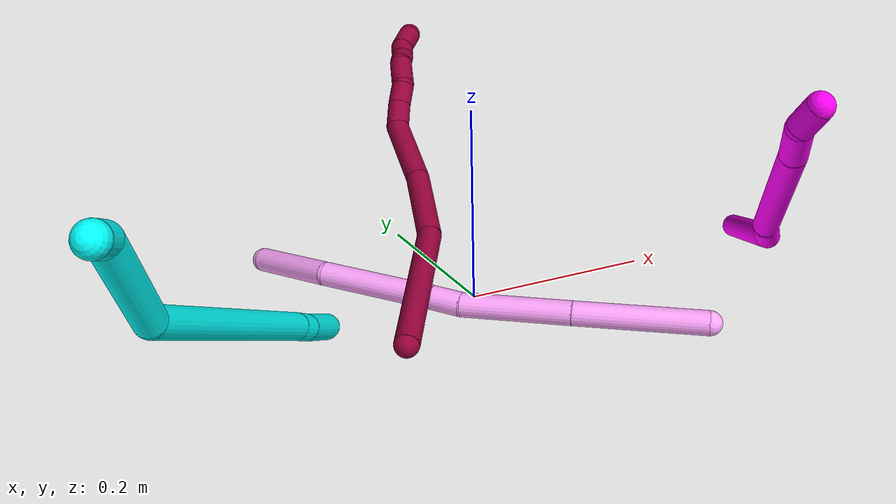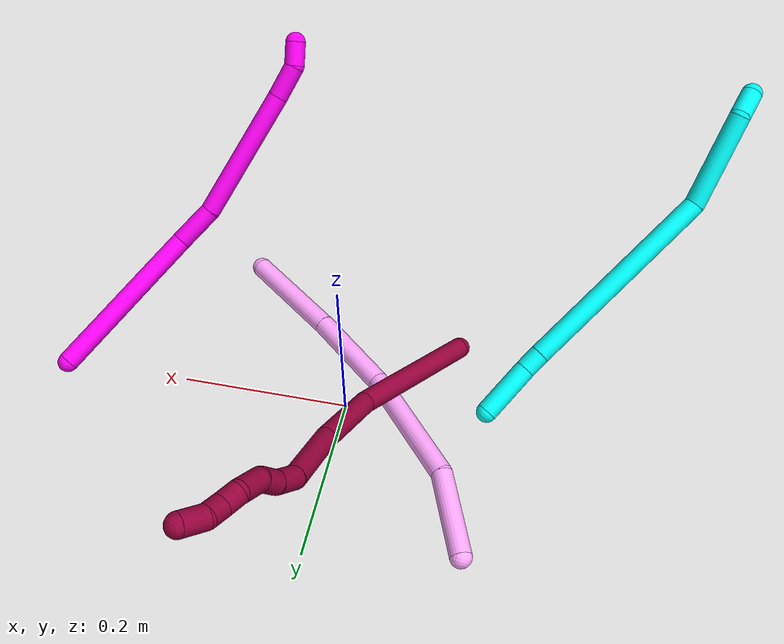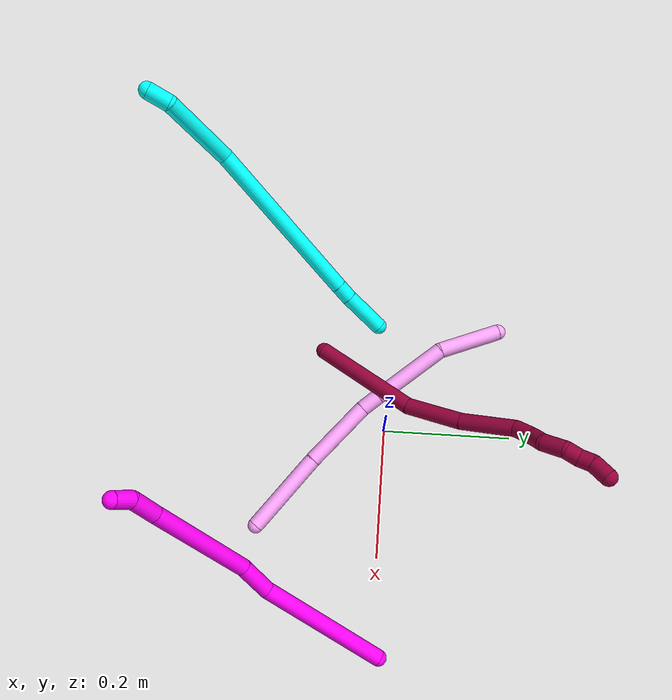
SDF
<sdf version="1.7">
 <world name="default">
  <model name="photoneo_s_sensor">
   <static>1</static>
   <pose>0 0 2 1.57079 1.57079 3.14159</pose>
   <link name="link">
    <inertial><mass>0.1</mass></inertial>
    <sensor name="sensor" type="depth">
     <update_rate>30</update_rate>
     <camera>
      <horizontal_fov>1.22</horizontal_fov>
      <image><width>1920</width><height>1200</height><format>B8G8R8</format></image>
      <clip><near>0.1</near><far>2</far></clip>
      <depth_camera><output>points</output></depth_camera>
     </camera>
     <plugin name="camera_plugin" filename="libgazebo_ros_depth_camera.so">
      <baseline>0.2</baseline>
      <alwaysOn>1</alwaysOn>
      <updateRate>0.0</updateRate>
      <cameraName>camera_ir</cameraName>
      <imageTopicName>/camera/color/image_raw</imageTopicName>
      <cameraInfoTopicName>/camera/color/camera_info</cameraInfoTopicName>
      <depthImageTopicName>/camera/depth/image_raw</depthImageTopicName>
      <depthImageCameraInfoTopicName>/camera/depth/camera_info</depthImageCameraInfoTopicName>
      <pointCloudTopicName>/camera/depth/points</pointCloudTopicName>
      <frameName>fr_optical</frameName>
      <pointCloudCutoff>0.1</pointCloudCutoff>
      <pointCloudCutoffMax>2.0</pointCloudCutoffMax>
      <distortionK1>0</distortionK1>
      <distortionK2>0</distortionK2>
      <distortionK3>0</distortionK3>
      <distortionT1>0</distortionT1>
      <distortionT2>0</distortionT2>
      <CxPrime>0</CxPrime>
      <Cx>0</Cx>
      <Cy>0</Cy>
      <focalLength>0</focalLength>
      <hackBaseline>0</hackBaseline>
     </plugin>
    </sensor>
   </link>
  </model>
  <model name="bin">
   <static>1</static>
   <link name="bottom">
    <collision name="collision-bottom">
     <pose>0 0 -0.01 0 -0 0</pose>
     <geometry><box><size>0.8 0.6 0.02</size></box></geometry>
     <surface>
      <friction><ode><mu>100</mu><mu2>100</mu2></ode></friction>
      <contact><collide_bitmask>65535</collide_bitmask></contact>
     </surface>
    </collision>
   </link>
   <link name="west_wall">
    <collision name="collision-west_wall">
     <pose>-0.41 0 0.1 0 -0 0</pose>
     <geometry><box><size>0.02 0.6 0.2</size></box></geometry>
     <surface>
      <friction><ode><mu>100</mu><mu2>100</mu2></ode></friction>
      <contact><collide_bitmask>65535</collide_bitmask></contact>
     </surface>
    </collision>
   </link>
   <link name="east_wall">
    <collision name="collision-east_wall">
     <pose>0.41 0 0.1 0 -0 0</pose>
     <geometry><box><size>0.02 0.6 0.2</size></box></geometry>
     <surface>
      <friction><ode><mu>100</mu><mu2>100</mu2></ode></friction>
      <contact><collide_bitmask>65535</collide_bitmask></contact>
     </surface>
    </collision>
   </link>
   <link name="south_wall">
    <collision name="collision-south_wall">
     <pose>0 -0.31 0.1 0 -0 0</pose>
     <geometry><box><size>0.8 0.02 0.2</size></box></geometry>
     <surface>
      <friction><ode><mu>100</mu><mu2>100</mu2></ode></friction>
      <contact><collide_bitmask>65535</collide_bitmask></contact>
     </surface>
    </collision>
   </link>
   <link name="north_wall">
    <collision name="collision-north_wall">
     <pose>0 0.31 0.1 0 -0 0</pose>
     <geometry><box><size>0.8 0.02 0.2</size></box></geometry>
     <surface>
      <friction><ode><mu>100</mu><mu2>100</mu2></ode></friction>
      <contact><collide_bitmask>65535</collide_bitmask></contact>
     </surface>
    </collision>
   </link>
  </model>
  <model name="3">
   <static>0</static>
   <link name="3">
    <collision name="collision-cylinder-e_1_1_4">
     <pose>-5e-06 -0.000323 0.034046 0.009489 -0.000144 -1e-06</pose>
     <geometry><cylinder><radius>0.0125</radius><length>0.068096</length></cylinder></geometry>
     <surface>
      <friction><ode><mu>1.16</mu><mu2>1.16</mu2><slip1>0</slip1><slip2>0</slip2></ode></friction>
      <contact><ode><kp>1e+06</kp><kd>1</kd><max_vel>0</max_vel><min_depth>0.001</min_depth></ode></contact>
     </surface>
    </collision>
    <visual name="visual-cylinder-e_1_1_4">
     <pose>-5e-06 -0.000323 0.034046 0.009489 -0.000144 -1e-06</pose>
     <geometry><cylinder><radius>0.0125</radius><length>0.068096</length></cylinder></geometry>
     <material><ambient>0.003922 1 0.996078 1</ambient></material>
    </visual>
    <collision name="collision-cylinder-e_2_4_5">
     <pose>-0.000521 -0.00163 0.0807 0.07784 -0.04042 -0.001574</pose>
     <geometry><cylinder><radius>0.0125</radius><length>0.025311</length></cylinder></geometry>
     <surface>
      <friction><ode><mu>1.16</mu><mu2>1.16</mu2><slip1>0</slip1><slip2>0</slip2></ode></friction>
      <contact><ode><kp>1e+06</kp><kd>1</kd><max_vel>0</max_vel><min_depth>0.001</min_depth></ode></contact>
     </surface>
    </collision>
    <visual name="visual-cylinder-e_2_4_5">
     <pose>-0.000521 -0.00163 0.0807 0.07784 -0.04042 -0.001574</pose>
     <geometry><cylinder><radius>0.0125</radius><length>0.025311</length></cylinder></geometry>
     <material><ambient>0.003922 1 0.996078 1</ambient></material>
    </visual>
    <collision name="collision-cylinder-e_3_5_6">
     <pose>-0.002179 -0.01444 0.221956 0.091674 -0.008875 -0.000407</pose>
     <geometry><cylinder><radius>0.0125</radius><length>0.258393</length></cylinder></geometry>
     <surface>
      <friction><ode><mu>1.16</mu><mu2>1.16</mu2><slip1>0</slip1><slip2>0</slip2></ode></friction>
      <contact><ode><kp>1e+06</kp><kd>1</kd><max_vel>0</max_vel><min_depth>0.001</min_depth></ode></contact>
     </surface>
    </collision>
    <visual name="visual-cylinder-e_3_5_6">
     <pose>-0.002179 -0.01444 0.221956 0.091674 -0.008875 -0.000407</pose>
     <geometry><cylinder><radius>0.0125</radius><length>0.258393</length></cylinder></geometry>
     <material><ambient>0.003922 1 0.996078 1</ambient></material>
    </visual>
    <collision name="collision-cylinder-e_4_6_7">
     <pose>-0.028888 -0.023341 0.402153 -0.056702 -0.459716 0.013271</pose>
     <geometry><cylinder><radius>0.0125</radius><length>0.115225</length></cylinder></geometry>
     <surface>
      <friction><ode><mu>1.16</mu><mu2>1.16</mu2><slip1>0</slip1><slip2>0</slip2></ode></friction>
      <contact><ode><kp>1e+06</kp><kd>1</kd><max_vel>0</max_vel><min_depth>0.001</min_depth></ode></contact>
     </surface>
    </collision>
    <visual name="visual-cylinder-e_4_6_7">
     <pose>-0.028888 -0.023341 0.402153 -0.056702 -0.459716 0.013271</pose>
     <geometry><cylinder><radius>0.0125</radius><length>0.115225</length></cylinder></geometry>
     <material><ambient>0.003922 1 0.996078 1</ambient></material>
    </visual>
    <collision name="collision-cylinder-e_5_7_2">
     <pose>-0.054245 -0.016326 0.469672 -0.250641 0.012445 -0.001568</pose>
     <geometry><cylinder><radius>0.0125</radius><length>0.032974</length></cylinder></geometry>
     <surface>
      <friction><ode><mu>1.16</mu><mu2>1.16</mu2><slip1>0</slip1><slip2>0</slip2></ode></friction>
      <contact><ode><kp>1e+06</kp><kd>1</kd><max_vel>0</max_vel><min_depth>0.001</min_depth></ode></contact>
     </surface>
    </collision>
    <visual name="visual-cylinder-e_5_7_2">
     <pose>-0.054245 -0.016326 0.469672 -0.250641 0.012445 -0.001568</pose>
     <geometry><cylinder><radius>0.0125</radius><length>0.032974</length></cylinder></geometry>
     <material><ambient>0.003922 1 0.996078 1</ambient></material>
    </visual>
    <collision name="collision-sphere-2">
     <pose>-0.05404 -0.012237 0.485643 0 -0 0</pose>
     <geometry><sphere><radius>0.0125</radius></sphere></geometry>
     <surface>
      <friction><ode><mu>1.16</mu><mu2>1.16</mu2><slip1>0</slip1><slip2>0</slip2></ode></friction>
      <contact><ode><kp>1e+06</kp><kd>1</kd><max_vel>0</max_vel><min_depth>0.001</min_depth></ode></contact>
     </surface>
    </collision>
    <visual name="visual-sphere-2">
     <pose>-0.05404 -0.012237 0.485643 0 -0 0</pose>
     <geometry><sphere><radius>0.0125</radius></sphere></geometry>
     <material><ambient>0.003922 1 0.996078 1</ambient></material>
    </visual>
    <collision name="collision-sphere-7">
     <pose>-0.054451 -0.020415 0.453702 0 -0 0</pose>
     <geometry><sphere><radius>0.0125</radius></sphere></geometry>
     <surface>
      <friction><ode><mu>1.16</mu><mu2>1.16</mu2><slip1>0</slip1><slip2>0</slip2></ode></friction>
      <contact><ode><kp>1e+06</kp><kd>1</kd><max_vel>0</max_vel><min_depth>0.001</min_depth></ode></contact>
     </surface>
    </collision>
    <visual name="visual-sphere-7">
     <pose>-0.054451 -0.020415 0.453702 0 -0 0</pose>
     <geometry><sphere><radius>0.0125</radius></sphere></geometry>
     <material><ambient>0.003922 1 0.996078 1</ambient></material>
    </visual>
    <collision name="collision-sphere-6">
     <pose>-0.003326 -0.026267 0.350605 0 -0 0</pose>
     <geometry><sphere><radius>0.0125</radius></sphere></geometry>
     <surface>
      <friction><ode><mu>1.16</mu><mu2>1.16</mu2><slip1>0</slip1><slip2>0</slip2></ode></friction>
      <contact><ode><kp>1e+06</kp><kd>1</kd><max_vel>0</max_vel><min_depth>0.001</min_depth></ode></contact>
     </surface>
    </collision>
    <visual name="visual-sphere-6">
     <pose>-0.003326 -0.026267 0.350605 0 -0 0</pose>
     <geometry><sphere><radius>0.0125</radius></sphere></geometry>
     <material><ambient>0.003922 1 0.996078 1</ambient></material>
    </visual>
    <collision name="collision-sphere-5">
     <pose>-0.001033 -0.002613 0.093307 0 -0 0</pose>
     <geometry><sphere><radius>0.0125</radius></sphere></geometry>
     <surface>
      <friction><ode><mu>1.16</mu><mu2>1.16</mu2><slip1>0</slip1><slip2>0</slip2></ode></friction>
      <contact><ode><kp>1e+06</kp><kd>1</kd><max_vel>0</max_vel><min_depth>0.001</min_depth></ode></contact>
     </surface>
    </collision>
    <visual name="visual-sphere-5">
     <pose>-0.001033 -0.002613 0.093307 0 -0 0</pose>
     <geometry><sphere><radius>0.0125</radius></sphere></geometry>
     <material><ambient>0.003922 1 0.996078 1</ambient></material>
    </visual>
    <collision name="collision-sphere-1">
     <geometry><sphere><radius>0.0125</radius></sphere></geometry>
     <surface>
      <friction><ode><mu>1.16</mu><mu2>1.16</mu2><slip1>0</slip1><slip2>0</slip2></ode></friction>
      <contact><ode><kp>1e+06</kp><kd>1</kd><max_vel>0</max_vel><min_depth>0.001</min_depth></ode></contact>
     </surface>
    </collision>
    <visual name="visual-sphere-1">
     <geometry><sphere><radius>0.0125</radius></sphere></geometry>
     <material><ambient>0.003922 1 0.996078 1</ambient></material>
    </visual>
    <collision name="collision-sphere-4">
     <pose>-1e-05 -0.000646 0.068093 0 -0 0</pose>
     <geometry><sphere><radius>0.0125</radius></sphere></geometry>
     <surface>
      <friction><ode><mu>1.16</mu><mu2>1.16</mu2><slip1>0</slip1><slip2>0</slip2></ode></friction>
      <contact><ode><kp>1e+06</kp><kd>1</kd><max_vel>0</max_vel><min_depth>0.001</min_depth></ode></contact>
     </surface>
    </collision>
    <visual name="visual-sphere-4">
     <pose>-1e-05 -0.000646 0.068093 0 -0 0</pose>
     <geometry><sphere><radius>0.0125</radius></sphere></geometry>
     <material><ambient>0.003922 1 0.996078 1</ambient></material>
    </visual>
    <inertial>
     <pose>-0.011388 -0.014044 0.247077 0 -0 0</pose>
     <mass>0.5</mass>
     <inertia>
      <ixx>0.001598</ixx>
      <ixy>0</ixy>
      <ixz>0</ixz>
      <iyy>0.001609</iyy>
      <iyz>0</iyz>
      <izz>0.000235</izz>
     </inertia>
    </inertial>
   </link>
   <pose>-0.167651 -0.018303 0.011491 -0.209306 1.12723 -2.42735</pose>
  </model>
  <model name="4">
   <static>0</static>
   <link name="4">
    <collision name="collision-cylinder-e_1_1_4">
     <pose>-0.054626 0.027755 -0.027089 -2.34405 -0.9534 1.77288</pose>
     <geometry><cylinder><radius>0.0125</radius><length>0.133987</length></cylinder></geometry>
     <surface>
      <friction><ode><mu>1.16</mu><mu2>1.16</mu2><slip1>0</slip1><slip2>0</slip2></ode></friction>
      <contact><ode><kp>1e+06</kp><kd>1</kd><max_vel>0</max_vel><min_depth>0.001</min_depth></ode></contact>
     </surface>
    </collision>
    <visual name="visual-cylinder-e_1_1_4">
     <pose>-0.054626 0.027755 -0.027089 -2.34405 -0.9534 1.77288</pose>
     <geometry><cylinder><radius>0.0125</radius><length>0.133987</length></cylinder></geometry>
     <material><ambient>1 0.65098 0.996078 1</ambient></material>
    </visual>
    <collision name="collision-cylinder-e_2_4_5">
     <pose>-0.153564 0.07915 -0.079583 -2.39217 -0.906416 1.78294</pose>
     <geometry><cylinder><radius>0.0125</radius><length>0.112567</length></cylinder></geometry>
     <surface>
      <friction><ode><mu>1.16</mu><mu2>1.16</mu2><slip1>0</slip1><slip2>0</slip2></ode></friction>
      <contact><ode><kp>1e+06</kp><kd>1</kd><max_vel>0</max_vel><min_depth>0.001</min_depth></ode></contact>
     </surface>
    </collision>
    <visual name="visual-cylinder-e_2_4_5">
     <pose>-0.153564 0.07915 -0.079583 -2.39217 -0.906416 1.78294</pose>
     <geometry><cylinder><radius>0.0125</radius><length>0.112567</length></cylinder></geometry>
     <material><ambient>1 0.65098 0.996078 1</ambient></material>
    </visual>
    <collision name="collision-cylinder-e_3_5_6">
     <pose>-0.208417 0.111535 -0.1128 -2.29986 -0.732283 1.41664</pose>
     <geometry><cylinder><radius>0.0125</radius><length>0.031534</length></cylinder></geometry>
     <surface>
      <friction><ode><mu>1.16</mu><mu2>1.16</mu2><slip1>0</slip1><slip2>0</slip2></ode></friction>
      <contact><ode><kp>1e+06</kp><kd>1</kd><max_vel>0</max_vel><min_depth>0.001</min_depth></ode></contact>
     </surface>
    </collision>
    <visual name="visual-cylinder-e_3_5_6">
     <pose>-0.208417 0.111535 -0.1128 -2.29986 -0.732283 1.41664</pose>
     <geometry><cylinder><radius>0.0125</radius><length>0.031534</length></cylinder></geometry>
     <material><ambient>1 0.65098 0.996078 1</ambient></material>
    </visual>
    <collision name="collision-cylinder-e_4_6_7">
     <pose>-0.259752 0.152939 -0.15274 -2.34801 -0.72749 1.47501</pose>
     <geometry><cylinder><radius>0.0125</radius><length>0.122687</length></cylinder></geometry>
     <surface>
      <friction><ode><mu>1.16</mu><mu2>1.16</mu2><slip1>0</slip1><slip2>0</slip2></ode></friction>
      <contact><ode><kp>1e+06</kp><kd>1</kd><max_vel>0</max_vel><min_depth>0.001</min_depth></ode></contact>
     </surface>
    </collision>
    <visual name="visual-cylinder-e_4_6_7">
     <pose>-0.259752 0.152939 -0.15274 -2.34801 -0.72749 1.47501</pose>
     <geometry><cylinder><radius>0.0125</radius><length>0.122687</length></cylinder></geometry>
     <material><ambient>1 0.65098 0.996078 1</ambient></material>
    </visual>
    <collision name="collision-cylinder-e_5_7_2">
     <pose>-0.321873 0.209212 -0.222934 -2.58633 -0.444371 1.34057</pose>
     <geometry><cylinder><radius>0.0125</radius><length>0.099224</length></cylinder></geometry>
     <surface>
      <friction><ode><mu>1.16</mu><mu2>1.16</mu2><slip1>0</slip1><slip2>0</slip2></ode></friction>
      <contact><ode><kp>1e+06</kp><kd>1</kd><max_vel>0</max_vel><min_depth>0.001</min_depth></ode></contact>
     </surface>
    </collision>
    <visual name="visual-cylinder-e_5_7_2">
     <pose>-0.321873 0.209212 -0.222934 -2.58633 -0.444371 1.34057</pose>
     <geometry><cylinder><radius>0.0125</radius><length>0.099224</length></cylinder></geometry>
     <material><ambient>1 0.65098 0.996078 1</ambient></material>
    </visual>
    <collision name="collision-sphere-2">
     <pose>-0.343201 0.232826 -0.260998 0 -0 0</pose>
     <geometry><sphere><radius>0.0125</radius></sphere></geometry>
     <surface>
      <friction><ode><mu>1.16</mu><mu2>1.16</mu2><slip1>0</slip1><slip2>0</slip2></ode></friction>
      <contact><ode><kp>1e+06</kp><kd>1</kd><max_vel>0</max_vel><min_depth>0.001</min_depth></ode></contact>
     </surface>
    </collision>
    <visual name="visual-sphere-2">
     <pose>-0.343201 0.232826 -0.260998 0 -0 0</pose>
     <geometry><sphere><radius>0.0125</radius></sphere></geometry>
     <material><ambient>1 0.65098 0.996078 1</ambient></material>
    </visual>
    <collision name="collision-sphere-7">
     <pose>-0.300545 0.185598 -0.18487 0 -0 0</pose>
     <geometry><sphere><radius>0.0125</radius></sphere></geometry>
     <surface>
      <friction><ode><mu>1.16</mu><mu2>1.16</mu2><slip1>0</slip1><slip2>0</slip2></ode></friction>
      <contact><ode><kp>1e+06</kp><kd>1</kd><max_vel>0</max_vel><min_depth>0.001</min_depth></ode></contact>
     </surface>
    </collision>
    <visual name="visual-sphere-7">
     <pose>-0.300545 0.185598 -0.18487 0 -0 0</pose>
     <geometry><sphere><radius>0.0125</radius></sphere></geometry>
     <material><ambient>1 0.65098 0.996078 1</ambient></material>
    </visual>
    <collision name="collision-sphere-6">
     <pose>-0.218958 0.120279 -0.120611 0 -0 0</pose>
     <geometry><sphere><radius>0.0125</radius></sphere></geometry>
     <surface>
      <friction><ode><mu>1.16</mu><mu2>1.16</mu2><slip1>0</slip1><slip2>0</slip2></ode></friction>
      <contact><ode><kp>1e+06</kp><kd>1</kd><max_vel>0</max_vel><min_depth>0.001</min_depth></ode></contact>
     </surface>
    </collision>
    <visual name="visual-sphere-6">
     <pose>-0.218958 0.120279 -0.120611 0 -0 0</pose>
     <geometry><sphere><radius>0.0125</radius></sphere></geometry>
     <material><ambient>1 0.65098 0.996078 1</ambient></material>
    </visual>
    <collision name="collision-sphere-5">
     <pose>-0.197876 0.10279 -0.104989 0 -0 0</pose>
     <geometry><sphere><radius>0.0125</radius></sphere></geometry>
     <surface>
      <friction><ode><mu>1.16</mu><mu2>1.16</mu2><slip1>0</slip1><slip2>0</slip2></ode></friction>
      <contact><ode><kp>1e+06</kp><kd>1</kd><max_vel>0</max_vel><min_depth>0.001</min_depth></ode></contact>
     </surface>
    </collision>
    <visual name="visual-sphere-5">
     <pose>-0.197876 0.10279 -0.104989 0 -0 0</pose>
     <geometry><sphere><radius>0.0125</radius></sphere></geometry>
     <material><ambient>1 0.65098 0.996078 1</ambient></material>
    </visual>
    <collision name="collision-sphere-1">
     <geometry><sphere><radius>0.0125</radius></sphere></geometry>
     <surface>
      <friction><ode><mu>1.16</mu><mu2>1.16</mu2><slip1>0</slip1><slip2>0</slip2></ode></friction>
      <contact><ode><kp>1e+06</kp><kd>1</kd><max_vel>0</max_vel><min_depth>0.001</min_depth></ode></contact>
     </surface>
    </collision>
    <visual name="visual-sphere-1">
     <geometry><sphere><radius>0.0125</radius></sphere></geometry>
     <material><ambient>1 0.65098 0.996078 1</ambient></material>
    </visual>
    <collision name="collision-sphere-4">
     <pose>-0.109252 0.05551 -0.054178 0 -0 0</pose>
     <geometry><sphere><radius>0.0125</radius></sphere></geometry>
     <surface>
      <friction><ode><mu>1.16</mu><mu2>1.16</mu2><slip1>0</slip1><slip2>0</slip2></ode></friction>
      <contact><ode><kp>1e+06</kp><kd>1</kd><max_vel>0</max_vel><min_depth>0.001</min_depth></ode></contact>
     </surface>
    </collision>
    <visual name="visual-sphere-4">
     <pose>-0.109252 0.05551 -0.054178 0 -0 0</pose>
     <geometry><sphere><radius>0.0125</radius></sphere></geometry>
     <material><ambient>1 0.65098 0.996078 1</ambient></material>
    </visual>
    <inertial>
     <pose>-0.189967 0.111337 -0.11401 0 -0 0</pose>
     <mass>0.5</mass>
     <inertia>
      <ixx>0.000349</ixx>
      <ixy>0</ixy>
      <ixz>0</ixz>
      <iyy>0.000703</iyy>
      <iyz>0</iyz>
      <izz>0.000125</izz>
     </inertia>
    </inertial>
   </link>
   <pose>0.160409 -0.18975 0.012057 0.964927 -0.123545 -0.045986</pose>
  </model>
  <model name="8">
   <static>0</static>
   <link name="8">
    <collision name="collision-cylinder-e_1_1_4">
     <pose>0.020318 0.016876 0.079688 -0.208689 0.244449 -0.025727</pose>
     <geometry><cylinder><radius>0.0125</radius><length>0.167902</length></cylinder></geometry>
     <surface>
      <friction><ode><mu>1.16</mu><mu2>1.16</mu2><slip1>0</slip1><slip2>0</slip2></ode></friction>
      <contact><ode><kp>1e+06</kp><kd>1</kd><max_vel>0</max_vel><min_depth>0.001</min_depth></ode></contact>
     </surface>
    </collision>
    <visual name="visual-cylinder-e_1_1_4">
     <pose>0.020318 0.016876 0.079688 -0.208689 0.244449 -0.025727</pose>
     <geometry><cylinder><radius>0.0125</radius><length>0.167902</length></cylinder></geometry>
     <material><ambient>0.584314 0 0.227451 1</ambient></material>
    </visual>
    <collision name="collision-cylinder-e_2_4_5">
     <pose>0.039046 0.038399 0.203368 -0.105263 -0.035923 0.001893</pose>
     <geometry><cylinder><radius>0.0125</radius><length>0.088532</length></cylinder></geometry>
     <surface>
      <friction><ode><mu>1.16</mu><mu2>1.16</mu2><slip1>0</slip1><slip2>0</slip2></ode></friction>
      <contact><ode><kp>1e+06</kp><kd>1</kd><max_vel>0</max_vel><min_depth>0.001</min_depth></ode></contact>
     </surface>
    </collision>
    <visual name="visual-cylinder-e_2_4_5">
     <pose>0.039046 0.038399 0.203368 -0.105263 -0.035923 0.001893</pose>
     <geometry><cylinder><radius>0.0125</radius><length>0.088532</length></cylinder></geometry>
     <material><ambient>0.584314 0 0.227451 1</ambient></material>
    </visual>
    <collision name="collision-cylinder-e_3_5_6">
     <pose>0.030048 0.045871 0.288827 -0.068 -0.176379 0.006015</pose>
     <geometry><cylinder><radius>0.0125</radius><length>0.084435</length></cylinder></geometry>
     <surface>
      <friction><ode><mu>1.16</mu><mu2>1.16</mu2><slip1>0</slip1><slip2>0</slip2></ode></friction>
      <contact><ode><kp>1e+06</kp><kd>1</kd><max_vel>0</max_vel><min_depth>0.001</min_depth></ode></contact>
     </surface>
    </collision>
    <visual name="visual-cylinder-e_3_5_6">
     <pose>0.030048 0.045871 0.288827 -0.068 -0.176379 0.006015</pose>
     <geometry><cylinder><radius>0.0125</radius><length>0.084435</length></cylinder></geometry>
     <material><ambient>0.584314 0 0.227451 1</ambient></material>
    </visual>
    <collision name="collision-cylinder-e_4_6_7">
     <pose>0.024423 0.045846 0.345148 0.189504 0.117273 0.011158</pose>
     <geometry><cylinder><radius>0.0125</radius><length>0.03046</length></cylinder></geometry>
     <surface>
      <friction><ode><mu>1.16</mu><mu2>1.16</mu2><slip1>0</slip1><slip2>0</slip2></ode></friction>
      <contact><ode><kp>1e+06</kp><kd>1</kd><max_vel>0</max_vel><min_depth>0.001</min_depth></ode></contact>
     </surface>
    </collision>
    <visual name="visual-cylinder-e_4_6_7">
     <pose>0.024423 0.045846 0.345148 0.189504 0.117273 0.011158</pose>
     <geometry><cylinder><radius>0.0125</radius><length>0.03046</length></cylinder></geometry>
     <material><ambient>0.584314 0 0.227451 1</ambient></material>
    </visual>
    <collision name="collision-cylinder-e_5_7_8">
     <pose>0.028577 0.037288 0.370888 0.483015 0.190634 0.04709</pose>
     <geometry><cylinder><radius>0.0125</radius><length>0.025038</length></cylinder></geometry>
     <surface>
      <friction><ode><mu>1.16</mu><mu2>1.16</mu2><slip1>0</slip1><slip2>0</slip2></ode></friction>
      <contact><ode><kp>1e+06</kp><kd>1</kd><max_vel>0</max_vel><min_depth>0.001</min_depth></ode></contact>
     </surface>
    </collision>
    <visual name="visual-cylinder-e_5_7_8">
     <pose>0.028577 0.037288 0.370888 0.483015 0.190634 0.04709</pose>
     <geometry><cylinder><radius>0.0125</radius><length>0.025038</length></cylinder></geometry>
     <material><ambient>0.584314 0 0.227451 1</ambient></material>
    </visual>
    <collision name="collision-cylinder-e_6_8_9">
     <pose>0.031001 0.030727 0.39909 0.049174 0.002981 7.3e-05</pose>
     <geometry><cylinder><radius>0.0125</radius><length>0.034673</length></cylinder></geometry>
     <surface>
      <friction><ode><mu>1.16</mu><mu2>1.16</mu2><slip1>0</slip1><slip2>0</slip2></ode></friction>
      <contact><ode><kp>1e+06</kp><kd>1</kd><max_vel>0</max_vel><min_depth>0.001</min_depth></ode></contact>
     </surface>
    </collision>
    <visual name="visual-cylinder-e_6_8_9">
     <pose>0.031001 0.030727 0.39909 0.049174 0.002981 7.3e-05</pose>
     <geometry><cylinder><radius>0.0125</radius><length>0.034673</length></cylinder></geometry>
     <material><ambient>0.584314 0 0.227451 1</ambient></material>
    </visual>
    <collision name="collision-cylinder-e_7_9_10">
     <pose>0.033279 0.033554 0.426002 -0.366184 0.213388 -0.039658</pose>
     <geometry><cylinder><radius>0.0125</radius><length>0.021032</length></cylinder></geometry>
     <surface>
      <friction><ode><mu>1.16</mu><mu2>1.16</mu2><slip1>0</slip1><slip2>0</slip2></ode></friction>
      <contact><ode><kp>1e+06</kp><kd>1</kd><max_vel>0</max_vel><min_depth>0.001</min_depth></ode></contact>
     </surface>
    </collision>
    <visual name="visual-cylinder-e_7_9_10">
     <pose>0.033279 0.033554 0.426002 -0.366184 0.213388 -0.039658</pose>
     <geometry><cylinder><radius>0.0125</radius><length>0.021032</length></cylinder></geometry>
     <material><ambient>0.584314 0 0.227451 1</ambient></material>
    </visual>
    <collision name="collision-cylinder-e_8_10_11">
     <pose>0.036038 0.038464 0.445593 -0.122476 0.052732 -0.003234</pose>
     <geometry><cylinder><radius>0.0125</radius><length>0.02017</length></cylinder></geometry>
     <surface>
      <friction><ode><mu>1.16</mu><mu2>1.16</mu2><slip1>0</slip1><slip2>0</slip2></ode></friction>
      <contact><ode><kp>1e+06</kp><kd>1</kd><max_vel>0</max_vel><min_depth>0.001</min_depth></ode></contact>
     </surface>
    </collision>
    <visual name="visual-cylinder-e_8_10_11">
     <pose>0.036038 0.038464 0.445593 -0.122476 0.052732 -0.003234</pose>
     <geometry><cylinder><radius>0.0125</radius><length>0.02017</length></cylinder></geometry>
     <material><ambient>0.584314 0 0.227451 1</ambient></material>
    </visual>
    <collision name="collision-cylinder-e_9_11_2">
     <pose>0.042286 0.040183 0.468226 -0.038574 0.42453 -0.008314</pose>
     <geometry><cylinder><radius>0.0125</radius><length>0.027759</length></cylinder></geometry>
     <surface>
      <friction><ode><mu>1.16</mu><mu2>1.16</mu2><slip1>0</slip1><slip2>0</slip2></ode></friction>
      <contact><ode><kp>1e+06</kp><kd>1</kd><max_vel>0</max_vel><min_depth>0.001</min_depth></ode></contact>
     </surface>
    </collision>
    <visual name="visual-cylinder-e_9_11_2">
     <pose>0.042286 0.040183 0.468226 -0.038574 0.42453 -0.008314</pose>
     <geometry><cylinder><radius>0.0125</radius><length>0.027759</length></cylinder></geometry>
     <material><ambient>0.584314 0 0.227451 1</ambient></material>
    </visual>
    <collision name="collision-sphere-2">
     <pose>0.048003 0.04067 0.480864 0 -0 0</pose>
     <geometry><sphere><radius>0.0125</radius></sphere></geometry>
     <surface>
      <friction><ode><mu>1.16</mu><mu2>1.16</mu2><slip1>0</slip1><slip2>0</slip2></ode></friction>
      <contact><ode><kp>1e+06</kp><kd>1</kd><max_vel>0</max_vel><min_depth>0.001</min_depth></ode></contact>
     </surface>
    </collision>
    <visual name="visual-sphere-2">
     <pose>0.048003 0.04067 0.480864 0 -0 0</pose>
     <geometry><sphere><radius>0.0125</radius></sphere></geometry>
     <material><ambient>0.584314 0 0.227451 1</ambient></material>
    </visual>
    <collision name="collision-sphere-11">
     <pose>0.036569 0.039695 0.455588 0 -0 0</pose>
     <geometry><sphere><radius>0.0125</radius></sphere></geometry>
     <surface>
      <friction><ode><mu>1.16</mu><mu2>1.16</mu2><slip1>0</slip1><slip2>0</slip2></ode></friction>
      <contact><ode><kp>1e+06</kp><kd>1</kd><max_vel>0</max_vel><min_depth>0.001</min_depth></ode></contact>
     </surface>
    </collision>
    <visual name="visual-sphere-11">
     <pose>0.036569 0.039695 0.455588 0 -0 0</pose>
     <geometry><sphere><radius>0.0125</radius></sphere></geometry>
     <material><ambient>0.584314 0 0.227451 1</ambient></material>
    </visual>
    <collision name="collision-sphere-10">
     <pose>0.035506 0.037234 0.435597 0 -0 0</pose>
     <geometry><sphere><radius>0.0125</radius></sphere></geometry>
     <surface>
      <friction><ode><mu>1.16</mu><mu2>1.16</mu2><slip1>0</slip1><slip2>0</slip2></ode></friction>
      <contact><ode><kp>1e+06</kp><kd>1</kd><max_vel>0</max_vel><min_depth>0.001</min_depth></ode></contact>
     </surface>
    </collision>
    <visual name="visual-sphere-10">
     <pose>0.035506 0.037234 0.435597 0 -0 0</pose>
     <geometry><sphere><radius>0.0125</radius></sphere></geometry>
     <material><ambient>0.584314 0 0.227451 1</ambient></material>
    </visual>
    <collision name="collision-sphere-9">
     <pose>0.031052 0.029874 0.416406 0 -0 0</pose>
     <geometry><sphere><radius>0.0125</radius></sphere></geometry>
     <surface>
      <friction><ode><mu>1.16</mu><mu2>1.16</mu2><slip1>0</slip1><slip2>0</slip2></ode></friction>
      <contact><ode><kp>1e+06</kp><kd>1</kd><max_vel>0</max_vel><min_depth>0.001</min_depth></ode></contact>
     </surface>
    </collision>
    <visual name="visual-sphere-9">
     <pose>0.031052 0.029874 0.416406 0 -0 0</pose>
     <geometry><sphere><radius>0.0125</radius></sphere></geometry>
     <material><ambient>0.584314 0 0.227451 1</ambient></material>
    </visual>
    <collision name="collision-sphere-4">
     <pose>0.040636 0.033751 0.159375 0 -0 0</pose>
     <geometry><sphere><radius>0.0125</radius></sphere></geometry>
     <surface>
      <friction><ode><mu>1.16</mu><mu2>1.16</mu2><slip1>0</slip1><slip2>0</slip2></ode></friction>
      <contact><ode><kp>1e+06</kp><kd>1</kd><max_vel>0</max_vel><min_depth>0.001</min_depth></ode></contact>
     </surface>
    </collision>
    <visual name="visual-sphere-4">
     <pose>0.040636 0.033751 0.159375 0 -0 0</pose>
     <geometry><sphere><radius>0.0125</radius></sphere></geometry>
     <material><ambient>0.584314 0 0.227451 1</ambient></material>
    </visual>
    <collision name="collision-sphere-1">
     <geometry><sphere><radius>0.0125</radius></sphere></geometry>
     <surface>
      <friction><ode><mu>1.16</mu><mu2>1.16</mu2><slip1>0</slip1><slip2>0</slip2></ode></friction>
      <contact><ode><kp>1e+06</kp><kd>1</kd><max_vel>0</max_vel><min_depth>0.001</min_depth></ode></contact>
     </surface>
    </collision>
    <visual name="visual-sphere-1">
     <geometry><sphere><radius>0.0125</radius></sphere></geometry>
     <material><ambient>0.584314 0 0.227451 1</ambient></material>
    </visual>
    <collision name="collision-sphere-8">
     <pose>0.030949 0.031579 0.381774 0 -0 0</pose>
     <geometry><sphere><radius>0.0125</radius></sphere></geometry>
     <surface>
      <friction><ode><mu>1.16</mu><mu2>1.16</mu2><slip1>0</slip1><slip2>0</slip2></ode></friction>
      <contact><ode><kp>1e+06</kp><kd>1</kd><max_vel>0</max_vel><min_depth>0.001</min_depth></ode></contact>
     </surface>
    </collision>
    <visual name="visual-sphere-8">
     <pose>0.030949 0.031579 0.381774 0 -0 0</pose>
     <geometry><sphere><radius>0.0125</radius></sphere></geometry>
     <material><ambient>0.584314 0 0.227451 1</ambient></material>
    </visual>
    <collision name="collision-sphere-5">
     <pose>0.037456 0.043047 0.247361 0 -0 0</pose>
     <geometry><sphere><radius>0.0125</radius></sphere></geometry>
     <surface>
      <friction><ode><mu>1.16</mu><mu2>1.16</mu2><slip1>0</slip1><slip2>0</slip2></ode></friction>
      <contact><ode><kp>1e+06</kp><kd>1</kd><max_vel>0</max_vel><min_depth>0.001</min_depth></ode></contact>
     </surface>
    </collision>
    <visual name="visual-sphere-5">
     <pose>0.037456 0.043047 0.247361 0 -0 0</pose>
     <geometry><sphere><radius>0.0125</radius></sphere></geometry>
     <material><ambient>0.584314 0 0.227451 1</ambient></material>
    </visual>
    <collision name="collision-sphere-6">
     <pose>0.022641 0.048695 0.330293 0 -0 0</pose>
     <geometry><sphere><radius>0.0125</radius></sphere></geometry>
     <surface>
      <friction><ode><mu>1.16</mu><mu2>1.16</mu2><slip1>0</slip1><slip2>0</slip2></ode></friction>
      <contact><ode><kp>1e+06</kp><kd>1</kd><max_vel>0</max_vel><min_depth>0.001</min_depth></ode></contact>
     </surface>
    </collision>
    <visual name="visual-sphere-6">
     <pose>0.022641 0.048695 0.330293 0 -0 0</pose>
     <geometry><sphere><radius>0.0125</radius></sphere></geometry>
     <material><ambient>0.584314 0 0.227451 1</ambient></material>
    </visual>
    <collision name="collision-sphere-7">
     <pose>0.026205 0.042997 0.360002 0 -0 0</pose>
     <geometry><sphere><radius>0.0125</radius></sphere></geometry>
     <surface>
      <friction><ode><mu>1.16</mu><mu2>1.16</mu2><slip1>0</slip1><slip2>0</slip2></ode></friction>
      <contact><ode><kp>1e+06</kp><kd>1</kd><max_vel>0</max_vel><min_depth>0.001</min_depth></ode></contact>
     </surface>
    </collision>
    <visual name="visual-sphere-7">
     <pose>0.026205 0.042997 0.360002 0 -0 0</pose>
     <geometry><sphere><radius>0.0125</radius></sphere></geometry>
     <material><ambient>0.584314 0 0.227451 1</ambient></material>
    </visual>
    <inertial>
     <pose>0.029081 0.032197 0.240706 0 -0 0</pose>
     <mass>0.5</mass>
     <inertia>
      <ixx>0.000513</ixx>
      <ixy>0</ixy>
      <ixz>0</ixz>
      <iyy>0.000517</iyy>
      <iyz>0</iyz>
      <izz>-0.00014</izz>
     </inertia>
    </inertial>
   </link>
   <pose>-0.120516 -0.102577 0.017892 -1.05596 0.087841 -0.285853</pose>
  </model>
  <model name="10">
   <static>0</static>
   <link name="10">
    <collision name="collision-cylinder-e_1_1_4">
     <pose>-0.018974 -0.044012 0.09042 0.452989 -0.186486 -0.043094</pose>
     <geometry><cylinder><radius>0.0125</radius><length>0.204673</length></cylinder></geometry>
     <surface>
      <friction><ode><mu>1.16</mu><mu2>1.16</mu2><slip1>0</slip1><slip2>0</slip2></ode></friction>
      <contact><ode><kp>1e+06</kp><kd>1</kd><max_vel>0</max_vel><min_depth>0.001</min_depth></ode></contact>
     </surface>
    </collision>
    <visual name="visual-cylinder-e_1_1_4">
     <pose>-0.018974 -0.044012 0.09042 0.452989 -0.186486 -0.043094</pose>
     <geometry><cylinder><radius>0.0125</radius><length>0.204673</length></cylinder></geometry>
     <material><ambient>1 0 0.964706 1</ambient></material>
    </visual>
    <collision name="collision-cylinder-e_2_4_5">
     <pose>-0.043439 -0.091098 0.207172 0.116253 -0.204221 -0.011925</pose>
     <geometry><cylinder><radius>0.0125</radius><length>0.054148</length></cylinder></geometry>
     <surface>
      <friction><ode><mu>1.16</mu><mu2>1.16</mu2><slip1>0</slip1><slip2>0</slip2></ode></friction>
      <contact><ode><kp>1e+06</kp><kd>1</kd><max_vel>0</max_vel><min_depth>0.001</min_depth></ode></contact>
     </surface>
    </collision>
    <visual name="visual-cylinder-e_2_4_5">
     <pose>-0.043439 -0.091098 0.207172 0.116253 -0.204221 -0.011925</pose>
     <geometry><cylinder><radius>0.0125</radius><length>0.054148</length></cylinder></geometry>
     <material><ambient>1 0 0.964706 1</ambient></material>
    </visual>
    <collision name="collision-cylinder-e_3_5_6">
     <pose>-0.04709 -0.102474 0.317251 0.098793 0.021851 0.00108</pose>
     <geometry><cylinder><radius>0.0125</radius><length>0.168353</length></cylinder></geometry>
     <surface>
      <friction><ode><mu>1.16</mu><mu2>1.16</mu2><slip1>0</slip1><slip2>0</slip2></ode></friction>
      <contact><ode><kp>1e+06</kp><kd>1</kd><max_vel>0</max_vel><min_depth>0.001</min_depth></ode></contact>
     </surface>
    </collision>
    <visual name="visual-cylinder-e_3_5_6">
     <pose>-0.04709 -0.102474 0.317251 0.098793 0.021851 0.00108</pose>
     <geometry><cylinder><radius>0.0125</radius><length>0.168353</length></cylinder></geometry>
     <material><ambient>1 0 0.964706 1</ambient></material>
    </visual>
    <collision name="collision-cylinder-e_4_6_7">
     <pose>-0.043963 -0.110715 0.422589 -0.002737 0.059563 -8.2e-05</pose>
     <geometry><cylinder><radius>0.0125</radius><length>0.043262</length></cylinder></geometry>
     <surface>
      <friction><ode><mu>1.16</mu><mu2>1.16</mu2><slip1>0</slip1><slip2>0</slip2></ode></friction>
      <contact><ode><kp>1e+06</kp><kd>1</kd><max_vel>0</max_vel><min_depth>0.001</min_depth></ode></contact>
     </surface>
    </collision>
    <visual name="visual-cylinder-e_4_6_7">
     <pose>-0.043963 -0.110715 0.422589 -0.002737 0.059563 -8.2e-05</pose>
     <geometry><cylinder><radius>0.0125</radius><length>0.043262</length></cylinder></geometry>
     <material><ambient>1 0 0.964706 1</ambient></material>
    </visual>
    <collision name="collision-cylinder-e_5_7_2">
     <pose>-0.035491 -0.113011 0.456883 0.183293 0.50758 0.047668</pose>
     <geometry><cylinder><radius>0.0125</radius><length>0.029564</length></cylinder></geometry>
     <surface>
      <friction><ode><mu>1.16</mu><mu2>1.16</mu2><slip1>0</slip1><slip2>0</slip2></ode></friction>
      <contact><ode><kp>1e+06</kp><kd>1</kd><max_vel>0</max_vel><min_depth>0.001</min_depth></ode></contact>
     </surface>
    </collision>
    <visual name="visual-cylinder-e_5_7_2">
     <pose>-0.035491 -0.113011 0.456883 0.183293 0.50758 0.047668</pose>
     <geometry><cylinder><radius>0.0125</radius><length>0.029564</length></cylinder></geometry>
     <material><ambient>1 0 0.964706 1</ambient></material>
    </visual>
    <collision name="collision-sphere-2">
     <pose>-0.028306 -0.115365 0.469585 0 -0 0</pose>
     <geometry><sphere><radius>0.0125</radius></sphere></geometry>
     <surface>
      <friction><ode><mu>1.16</mu><mu2>1.16</mu2><slip1>0</slip1><slip2>0</slip2></ode></friction>
      <contact><ode><kp>1e+06</kp><kd>1</kd><max_vel>0</max_vel><min_depth>0.001</min_depth></ode></contact>
     </surface>
    </collision>
    <visual name="visual-sphere-2">
     <pose>-0.028306 -0.115365 0.469585 0 -0 0</pose>
     <geometry><sphere><radius>0.0125</radius></sphere></geometry>
     <material><ambient>1 0 0.964706 1</ambient></material>
    </visual>
    <collision name="collision-sphere-7">
     <pose>-0.042676 -0.110656 0.444181 0 -0 0</pose>
     <geometry><sphere><radius>0.0125</radius></sphere></geometry>
     <surface>
      <friction><ode><mu>1.16</mu><mu2>1.16</mu2><slip1>0</slip1><slip2>0</slip2></ode></friction>
      <contact><ode><kp>1e+06</kp><kd>1</kd><max_vel>0</max_vel><min_depth>0.001</min_depth></ode></contact>
     </surface>
    </collision>
    <visual name="visual-sphere-7">
     <pose>-0.042676 -0.110656 0.444181 0 -0 0</pose>
     <geometry><sphere><radius>0.0125</radius></sphere></geometry>
     <material><ambient>1 0 0.964706 1</ambient></material>
    </visual>
    <collision name="collision-sphere-6">
     <pose>-0.045251 -0.110774 0.400997 0 -0 0</pose>
     <geometry><sphere><radius>0.0125</radius></sphere></geometry>
     <surface>
      <friction><ode><mu>1.16</mu><mu2>1.16</mu2><slip1>0</slip1><slip2>0</slip2></ode></friction>
      <contact><ode><kp>1e+06</kp><kd>1</kd><max_vel>0</max_vel><min_depth>0.001</min_depth></ode></contact>
     </surface>
    </collision>
    <visual name="visual-sphere-6">
     <pose>-0.045251 -0.110774 0.400997 0 -0 0</pose>
     <geometry><sphere><radius>0.0125</radius></sphere></geometry>
     <material><ambient>1 0 0.964706 1</ambient></material>
    </visual>
    <collision name="collision-sphere-5">
     <pose>-0.048929 -0.094173 0.233505 0 -0 0</pose>
     <geometry><sphere><radius>0.0125</radius></sphere></geometry>
     <surface>
      <friction><ode><mu>1.16</mu><mu2>1.16</mu2><slip1>0</slip1><slip2>0</slip2></ode></friction>
      <contact><ode><kp>1e+06</kp><kd>1</kd><max_vel>0</max_vel><min_depth>0.001</min_depth></ode></contact>
     </surface>
    </collision>
    <visual name="visual-sphere-5">
     <pose>-0.048929 -0.094173 0.233505 0 -0 0</pose>
     <geometry><sphere><radius>0.0125</radius></sphere></geometry>
     <material><ambient>1 0 0.964706 1</ambient></material>
    </visual>
    <collision name="collision-sphere-1">
     <geometry><sphere><radius>0.0125</radius></sphere></geometry>
     <surface>
      <friction><ode><mu>1.16</mu><mu2>1.16</mu2><slip1>0</slip1><slip2>0</slip2></ode></friction>
      <contact><ode><kp>1e+06</kp><kd>1</kd><max_vel>0</max_vel><min_depth>0.001</min_depth></ode></contact>
     </surface>
    </collision>
    <visual name="visual-sphere-1">
     <geometry><sphere><radius>0.0125</radius></sphere></geometry>
     <material><ambient>1 0 0.964706 1</ambient></material>
    </visual>
    <collision name="collision-sphere-4">
     <pose>-0.037948 -0.088023 0.18084 0 -0 0</pose>
     <geometry><sphere><radius>0.0125</radius></sphere></geometry>
     <surface>
      <friction><ode><mu>1.16</mu><mu2>1.16</mu2><slip1>0</slip1><slip2>0</slip2></ode></friction>
      <contact><ode><kp>1e+06</kp><kd>1</kd><max_vel>0</max_vel><min_depth>0.001</min_depth></ode></contact>
     </surface>
    </collision>
    <visual name="visual-sphere-4">
     <pose>-0.037948 -0.088023 0.18084 0 -0 0</pose>
     <geometry><sphere><radius>0.0125</radius></sphere></geometry>
     <material><ambient>1 0 0.964706 1</ambient></material>
    </visual>
    <inertial>
     <pose>-0.034229 -0.078647 0.229848 0 -0 0</pose>
     <mass>0.5</mass>
     <inertia>
      <ixx>0.001107</ixx>
      <ixy>0</ixy>
      <ixz>0</ixz>
      <iyy>0.001042</iyy>
      <iyz>0</iyz>
      <izz>0.000516</izz>
     </inertia>
    </inertial>
   </link>
   <pose>0.347368 0.012006 0.01152 0.633853 -0.510089 -0.094783</pose>
  </model>
 </world>
</sdf>
